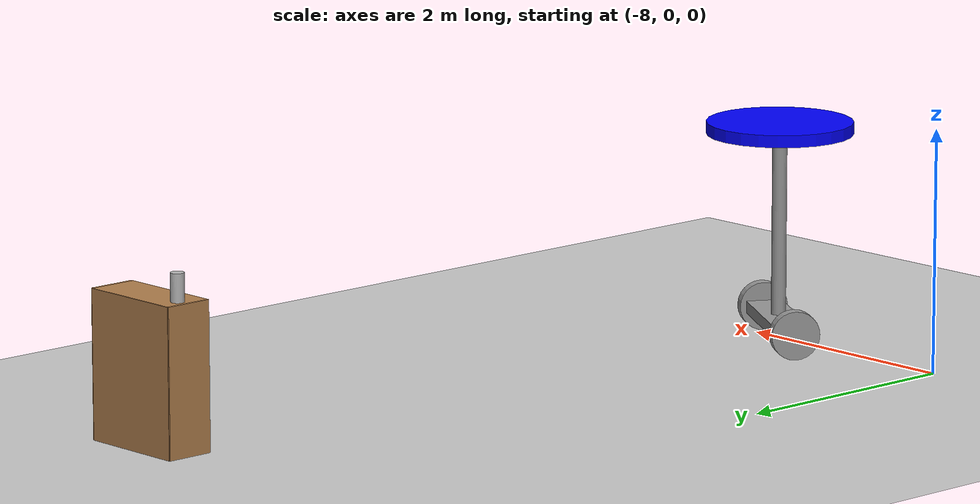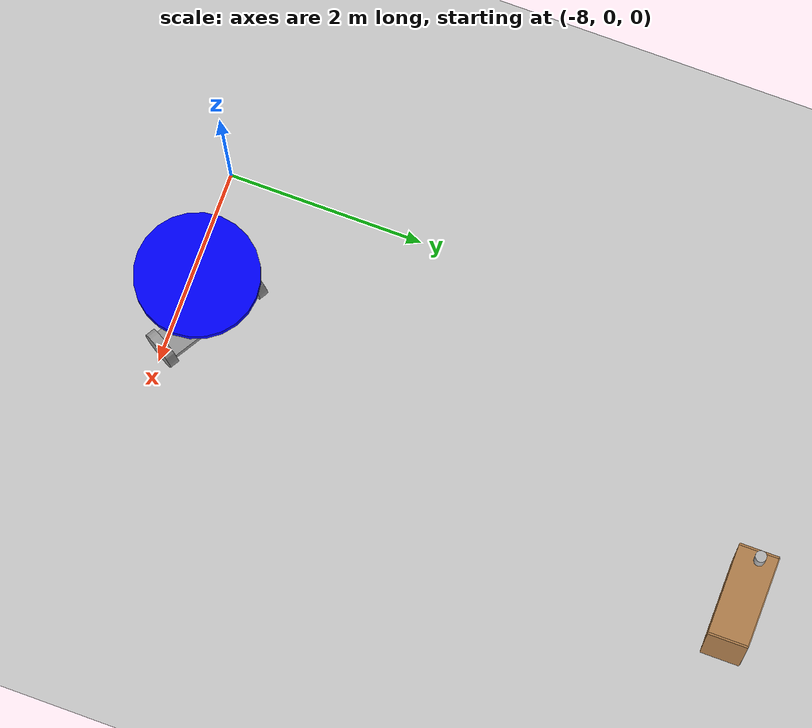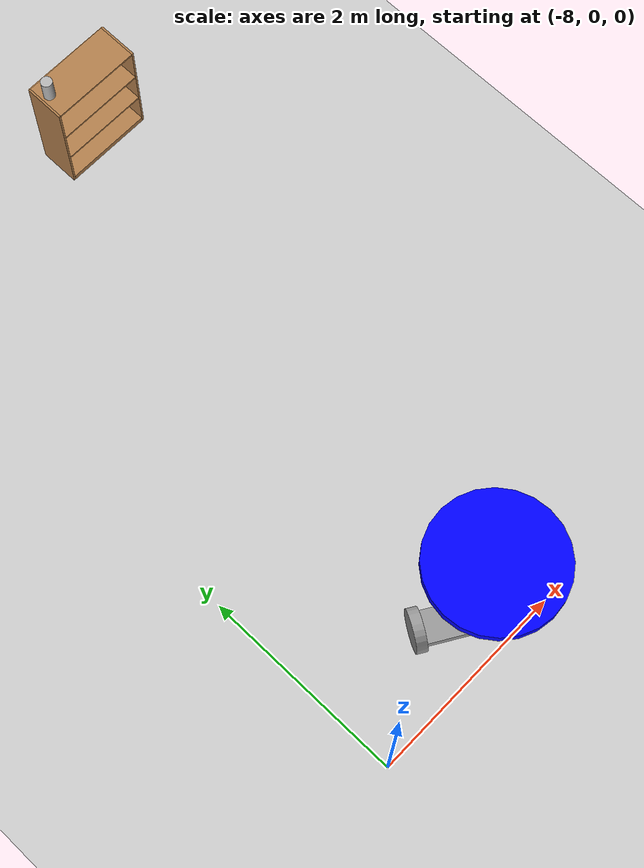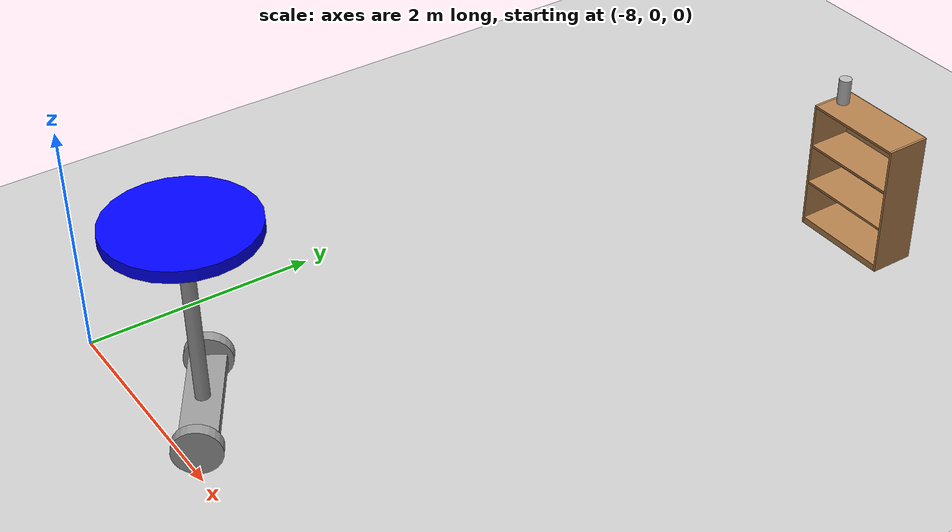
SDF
<sdf version="1.6">
 <world name="default">
  <model name="ground_plane">
   <static>1</static>
   <link name="link">
    <collision name="collision">
     <geometry><plane><normal>0 0 1</normal><size>100 100</size></plane></geometry>
     <surface><friction><ode><mu>100</mu><mu2>50</mu2></ode></friction></surface>
    </collision>
    <visual name="visual">
     <cast_shadows>0</cast_shadows>
     <geometry><plane><normal>0 0 1</normal><size>100 100</size></plane></geometry>
     <material>
      <script><uri>file://media/materials/scripts/gazebo.material</uri><name>Gazebo/Grey</name></script>
     </material>
    </visual>
   </link>
  </model>
  <model name="two_wheel_table_clone">
   <link name="link_0">
    <inertial>
     <mass>1</mass>
     <inertia>
      <ixx>0.166667</ixx>
      <ixy>0</ixy>
      <ixz>0</ixz>
      <iyy>0.166667</iyy>
      <iyz>0</iyz>
      <izz>0.166667</izz>
     </inertia>
    </inertial>
    <visual name="visual">
     <geometry><box><size>0.3 1 0.1</size></box></geometry>
     <material>
      <lighting>1</lighting>
      <script><uri>file://media/materials/scripts/gazebo.material</uri><name>Gazebo/Grey</name></script>
      <shader type="pixel"><normal_map>__default__</normal_map></shader>
      <ambient>0.3 0.3 0.3 1</ambient>
      <diffuse>0.7 0.7 0.7 1</diffuse>
      <specular>0.01 0.01 0.01 1</specular>
      <emissive>0 0 0 1</emissive>
     </material>
    </visual>
    <collision name="collision">
     <geometry><box><size>0.3 1 0.1</size></box></geometry>
     <surface>
      <friction>
       <ode><mu>1</mu><mu2>1</mu2><fdir1>0 0 0</fdir1><slip1>0</slip1><slip2>0</slip2></ode>
       <torsional>
        <coefficient>1</coefficient>
        <patch_radius>0</patch_radius>
        <surface_radius>0</surface_radius>
        <use_patch_radius>1</use_patch_radius>
        <ode><slip>0</slip></ode>
       </torsional>
      </friction>
      <bounce><restitution_coefficient>0</restitution_coefficient><threshold>1e+06</threshold></bounce>
      <contact>
       <collide_without_contact>0</collide_without_contact>
       <collide_without_contact_bitmask>1</collide_without_contact_bitmask>
       <collide_bitmask>1</collide_bitmask>
       <ode>
        <soft_cfm>0</soft_cfm>
        <soft_erp>0.2</soft_erp>
        <kp>1e+13</kp>
        <kd>1</kd>
        <max_vel>0.01</max_vel>
        <min_depth>0</min_depth>
       </ode>
       <bullet>
        <split_impulse>1</split_impulse>
        <split_impulse_penetration_threshold>-0.01</split_impulse_penetration_threshold>
        <soft_cfm>0</soft_cfm>
        <soft_erp>0.2</soft_erp>
        <kp>1e+13</kp>
        <kd>1</kd>
       </bullet>
      </contact>
     </surface>
    </collision>
   </link>
   <link name="link_1">
    <pose>-0 -0.550159 -0 1.57 -0 0</pose>
    <inertial>
     <mass>1</mass>
     <inertia><ixx>0.145833</ixx><ixy>0</ixy><ixz>0</ixz><iyy>0.145833</iyy><iyz>0</iyz><izz>0.125</izz></inertia>
    </inertial>
    <visual name="visual">
     <geometry><cylinder><radius>0.2</radius><length>0.1</length></cylinder></geometry>
     <material>
      <lighting>1</lighting>
      <script><uri>file://media/materials/scripts/gazebo.material</uri><name>Gazebo/Grey</name></script>
      <shader type="pixel"><normal_map>__default__</normal_map></shader>
      <ambient>0 0 0 1</ambient>
      <diffuse>0.7 0.7 0.7 1</diffuse>
      <specular>0.01 0.01 0.01 1</specular>
      <emissive>0 0 0 1</emissive>
     </material>
    </visual>
    <collision name="collision">
     <geometry><cylinder><radius>0.2</radius><length>0.1</length></cylinder></geometry>
     <surface>
      <friction>
       <ode><mu>1</mu><mu2>1</mu2><fdir1>0 0 0</fdir1><slip1>0</slip1><slip2>0</slip2></ode>
       <torsional>
        <coefficient>1</coefficient>
        <patch_radius>0</patch_radius>
        <surface_radius>0</surface_radius>
        <use_patch_radius>1</use_patch_radius>
        <ode><slip>0</slip></ode>
       </torsional>
      </friction>
      <bounce><restitution_coefficient>0</restitution_coefficient><threshold>1e+06</threshold></bounce>
      <contact>
       <collide_without_contact>0</collide_without_contact>
       <collide_without_contact_bitmask>1</collide_without_contact_bitmask>
       <collide_bitmask>1</collide_bitmask>
       <ode>
        <soft_cfm>0</soft_cfm>
        <soft_erp>0.2</soft_erp>
        <kp>1e+13</kp>
        <kd>1</kd>
        <max_vel>0.01</max_vel>
        <min_depth>0</min_depth>
       </ode>
       <bullet>
        <split_impulse>1</split_impulse>
        <split_impulse_penetration_threshold>-0.01</split_impulse_penetration_threshold>
        <soft_cfm>0</soft_cfm>
        <soft_erp>0.2</soft_erp>
        <kp>1e+13</kp>
        <kd>1</kd>
       </bullet>
      </contact>
     </surface>
    </collision>
   </link>
   <link name="link_1_0">
    <pose>-0 -0 0.3 0 -0 0</pose>
    <inertial>
     <mass>1</mass>
     <inertia><ixx>0.145833</ixx><ixy>0</ixy><ixz>0</ixz><iyy>0.145833</iyy><iyz>0</iyz><izz>0.125</izz></inertia>
    </inertial>
    <visual name="visual">
     <pose>0 0 0.5 0 -0 0</pose>
     <geometry><cylinder><radius>0.06</radius><length>1.5</length></cylinder></geometry>
     <material>
      <lighting>1</lighting>
      <script><uri>file://media/materials/scripts/gazebo.material</uri><name>Gazebo/Grey</name></script>
      <shader type="pixel"><normal_map>__default__</normal_map></shader>
      <ambient>0.3 0.3 0.3 1</ambient>
      <diffuse>0.7 0.7 0.7 1</diffuse>
      <specular>0.01 0.01 0.01 1</specular>
      <emissive>0 0 0 1</emissive>
     </material>
    </visual>
    <collision name="collision">
     <pose>0 0 0.5 0 -0 0</pose>
     <geometry><cylinder><radius>0.06</radius><length>1.5</length></cylinder></geometry>
     <surface>
      <friction>
       <ode><mu>1</mu><mu2>1</mu2><fdir1>0 0 0</fdir1><slip1>0</slip1><slip2>0</slip2></ode>
       <torsional>
        <coefficient>1</coefficient>
        <patch_radius>0</patch_radius>
        <surface_radius>0</surface_radius>
        <use_patch_radius>1</use_patch_radius>
        <ode><slip>0</slip></ode>
       </torsional>
      </friction>
      <bounce><restitution_coefficient>0</restitution_coefficient><threshold>1e+06</threshold></bounce>
      <contact>
       <collide_without_contact>0</collide_without_contact>
       <collide_without_contact_bitmask>1</collide_without_contact_bitmask>
       <collide_bitmask>1</collide_bitmask>
       <ode>
        <soft_cfm>0</soft_cfm>
        <soft_erp>0.2</soft_erp>
        <kp>1e+13</kp>
        <kd>1</kd>
        <max_vel>0.01</max_vel>
        <min_depth>0</min_depth>
       </ode>
       <bullet>
        <split_impulse>1</split_impulse>
        <split_impulse_penetration_threshold>-0.01</split_impulse_penetration_threshold>
        <soft_cfm>0</soft_cfm>
        <soft_erp>0.2</soft_erp>
        <kp>1e+13</kp>
        <kd>1</kd>
       </bullet>
      </contact>
     </surface>
    </collision>
   </link>
   <link name="link_1_clone">
    <pose>0 0.550159 0 1.57 -0 0</pose>
    <inertial>
     <mass>1</mass>
     <inertia><ixx>0.145833</ixx><ixy>0</ixy><ixz>0</ixz><iyy>0.145833</iyy><iyz>0</iyz><izz>0.125</izz></inertia>
    </inertial>
    <visual name="visual">
     <geometry><cylinder><radius>0.2</radius><length>0.1</length></cylinder></geometry>
     <material>
      <lighting>1</lighting>
      <script><uri>file://media/materials/scripts/gazebo.material</uri><name>Gazebo/Grey</name></script>
      <shader type="pixel"><normal_map>__default__</normal_map></shader>
      <ambient>0.3 0.3 0.3 1</ambient>
      <diffuse>0 0 0 1</diffuse>
      <specular>0 0 0 1</specular>
      <emissive>0 0 0 1</emissive>
     </material>
    </visual>
    <collision name="collision">
     <geometry><cylinder><radius>0.2</radius><length>0.1</length></cylinder></geometry>
     <surface>
      <friction>
       <ode><mu>1</mu><mu2>1</mu2><fdir1>0 0 0</fdir1><slip1>0</slip1><slip2>0</slip2></ode>
       <torsional>
        <coefficient>1</coefficient>
        <patch_radius>0</patch_radius>
        <surface_radius>0</surface_radius>
        <use_patch_radius>1</use_patch_radius>
        <ode><slip>0</slip></ode>
       </torsional>
      </friction>
      <bounce><restitution_coefficient>0</restitution_coefficient><threshold>1e+06</threshold></bounce>
      <contact>
       <collide_without_contact>0</collide_without_contact>
       <collide_without_contact_bitmask>1</collide_without_contact_bitmask>
       <collide_bitmask>1</collide_bitmask>
       <ode>
        <soft_cfm>0</soft_cfm>
        <soft_erp>0.2</soft_erp>
        <kp>1e+13</kp>
        <kd>1</kd>
        <max_vel>0.01</max_vel>
        <min_depth>0</min_depth>
       </ode>
       <bullet>
        <split_impulse>1</split_impulse>
        <split_impulse_penetration_threshold>-0.01</split_impulse_penetration_threshold>
        <soft_cfm>0</soft_cfm>
        <soft_erp>0.2</soft_erp>
        <kp>1e+13</kp>
        <kd>1</kd>
       </bullet>
      </contact>
     </surface>
    </collision>
   </link>
   <link name="link_2">
    <pose>0 -0 1.6 -1e-06 0 0</pose>
    <inertial>
     <mass>1</mass>
     <inertia><ixx>0.145833</ixx><ixy>0</ixy><ixz>0</ixz><iyy>0.145833</iyy><iyz>0</iyz><izz>0.125</izz></inertia>
    </inertial>
    <kinematic>1</kinematic>
    <visual name="visual">
     <geometry><cylinder><radius>0.6</radius><length>0.1</length></cylinder></geometry>
     <material>
      <lighting>1</lighting>
      <script><uri>file://media/materials/scripts/gazebo.material</uri><name>Gazebo/Grey</name></script>
      <shader type="pixel"><normal_map>__default__</normal_map></shader>
      <ambient>0 0 1 1</ambient>
      <diffuse>0 0 1 1</diffuse>
      <specular>0 0 1 1</specular>
      <emissive>0 0 1 1</emissive>
     </material>
    </visual>
    <collision name="collision">
     <geometry><cylinder><radius>0.6</radius><length>0.1</length></cylinder></geometry>
     <surface>
      <friction>
       <ode><mu>1</mu><mu2>1</mu2><fdir1>0 0 0</fdir1><slip1>0</slip1><slip2>0</slip2></ode>
       <torsional>
        <coefficient>1</coefficient>
        <patch_radius>0</patch_radius>
        <surface_radius>0</surface_radius>
        <use_patch_radius>1</use_patch_radius>
        <ode><slip>0</slip></ode>
       </torsional>
      </friction>
      <bounce><restitution_coefficient>0</restitution_coefficient><threshold>1e+06</threshold></bounce>
      <contact>
       <collide_without_contact>0</collide_without_contact>
       <collide_without_contact_bitmask>1</collide_without_contact_bitmask>
       <collide_bitmask>1</collide_bitmask>
       <ode>
        <soft_cfm>0</soft_cfm>
        <soft_erp>0.2</soft_erp>
        <kp>1e+13</kp>
        <kd>1</kd>
        <max_vel>0.01</max_vel>
        <min_depth>0</min_depth>
       </ode>
       <bullet>
        <split_impulse>1</split_impulse>
        <split_impulse_penetration_threshold>-0.01</split_impulse_penetration_threshold>
        <soft_cfm>0</soft_cfm>
        <soft_erp>0.2</soft_erp>
        <kp>1e+13</kp>
        <kd>1</kd>
       </bullet>
      </contact>
     </surface>
    </collision>
   </link>
   <joint name="link_0_JOINT_0_0" type="fixed">
    <parent>link_0</parent>
    <child>link_1_0</child>
    <pose>0 0 0.2 0 -0 0</pose>
    <physics>
     <ode><limit><cfm>0</cfm><erp>0.2</erp></limit><suspension><cfm>0</cfm><erp>0.2</erp></suspension></ode>
    </physics>
   </joint>
   <joint name="link_0_JOINT_0" type="revolute">
    <parent>link_0</parent>
    <child>link_1</child>
    <axis>
     <xyz>1 0 0</xyz>
     <use_parent_model_frame>0</use_parent_model_frame>
     <limit>
      <lower>-1.79769e+308</lower>
      <upper>1.79769e+308</upper>
      <effort>-1</effort>
      <velocity>-1</velocity>
     </limit>
     <dynamics>
      <spring_reference>0</spring_reference>
      <spring_stiffness>0</spring_stiffness>
      <damping>0</damping>
      <friction>0</friction>
     </dynamics>
    </axis>
    <physics>
     <ode><limit><cfm>0</cfm><erp>0.2</erp></limit><suspension><cfm>0</cfm><erp>0.2</erp></suspension></ode>
    </physics>
   </joint>
   <joint name="link_0_JOINT_1" type="revolute">
    <parent>link_0</parent>
    <child>link_1_clone</child>
    <axis>
     <xyz>1 0 0</xyz>
     <use_parent_model_frame>0</use_parent_model_frame>
     <limit>
      <lower>-1.79769e+308</lower>
      <upper>1.79769e+308</upper>
      <effort>-1</effort>
      <velocity>-1</velocity>
     </limit>
     <dynamics>
      <spring_reference>0</spring_reference>
      <spring_stiffness>0</spring_stiffness>
      <damping>0</damping>
      <friction>0</friction>
     </dynamics>
    </axis>
    <physics>
     <ode><limit><cfm>0</cfm><erp>0.2</erp></limit><suspension><cfm>0</cfm><erp>0.2</erp></suspension></ode>
    </physics>
   </joint>
   <joint name="link_1_0_JOINT_1" type="revolute">
    <parent>link_1_0</parent>
    <child>link_2</child>
    <axis>
     <xyz>1 0 0</xyz>
     <use_parent_model_frame>0</use_parent_model_frame>
     <limit>
      <lower>-1.79769e+308</lower>
      <upper>1.79769e+308</upper>
      <effort>-1</effort>
      <velocity>-1</velocity>
     </limit>
     <dynamics>
      <spring_reference>0</spring_reference>
      <spring_stiffness>0</spring_stiffness>
      <damping>0</damping>
      <friction>0</friction>
     </dynamics>
    </axis>
    <physics>
     <ode><limit><cfm>0</cfm><erp>0.2</erp></limit><suspension><cfm>0</cfm><erp>0.2</erp></suspension></ode>
    </physics>
   </joint>
   <static>0</static>
   <pose>-6.55328 0.308315 0.248073 -0.001802 0.000771 1.02054</pose>
  </model>
  <model name="bookshelf">
   <static>1</static>
   <link name="link">
    <inertial><mass>1</mass></inertial>
    <collision name="back">
     <pose>0 0.005 0.6 0 -0 0</pose>
     <geometry><box><size>0.9 0.01 1.2</size></box></geometry>
    </collision>
    <visual name="visual1">
     <pose>0 0.005 0.6 0 -0 0</pose>
     <geometry><box><size>0.9 0.01 1.2</size></box></geometry>
     <material>
      <script><uri>file://media/materials/scripts/gazebo.material</uri><name>Gazebo/Wood</name></script>
     </material>
    </visual>
    <collision name="left_side">
     <pose>0.45 -0.195 0.6 0 -0 0</pose>
     <geometry><box><size>0.02 0.4 1.2</size></box></geometry>
    </collision>
    <visual name="visual2">
     <pose>0.45 -0.195 0.6 0 -0 0</pose>
     <geometry><box><size>0.02 0.4 1.2</size></box></geometry>
     <material>
      <script><uri>file://media/materials/scripts/gazebo.material</uri><name>Gazebo/Wood</name></script>
     </material>
    </visual>
    <collision name="right_side">
     <pose>-0.45 -0.195 0.6 0 -0 0</pose>
     <geometry><box><size>0.02 0.4 1.2</size></box></geometry>
    </collision>
    <visual name="visual3">
     <pose>-0.45 -0.195 0.6 0 -0 0</pose>
     <geometry><box><size>0.02 0.4 1.2</size></box></geometry>
     <material>
      <script><uri>file://media/materials/scripts/gazebo.material</uri><name>Gazebo/Wood</name></script>
     </material>
    </visual>
    <collision name="bottom">
     <pose>0 -0.195 0.03 0 -0 0</pose>
     <geometry><box><size>0.88 0.4 0.06</size></box></geometry>
    </collision>
    <visual name="visual4">
     <pose>0 -0.195 0.03 0 -0 0</pose>
     <geometry><box><size>0.88 0.4 0.06</size></box></geometry>
     <material>
      <script><uri>file://media/materials/scripts/gazebo.material</uri><name>Gazebo/Wood</name></script>
     </material>
    </visual>
    <collision name="top">
     <pose>0 -0.195 1.19 0 -0 0</pose>
     <geometry><box><size>0.88 0.4 0.02</size></box></geometry>
    </collision>
    <visual name="visual5">
     <pose>0 -0.195 1.19 0 -0 0</pose>
     <geometry><box><size>0.88 0.4 0.02</size></box></geometry>
     <material>
      <script><uri>file://media/materials/scripts/gazebo.material</uri><name>Gazebo/Wood</name></script>
     </material>
    </visual>
    <collision name="low_shelf">
     <pose>0 -0.195 0.43 0 -0 0</pose>
     <geometry><box><size>0.88 0.4 0.02</size></box></geometry>
    </collision>
    <visual name="visual6">
     <pose>0 -0.195 0.43 0 -0 0</pose>
     <geometry><box><size>0.88 0.4 0.02</size></box></geometry>
     <material>
      <script><uri>file://media/materials/scripts/gazebo.material</uri><name>Gazebo/Wood</name></script>
     </material>
    </visual>
    <collision name="high_shelf">
     <pose>0 -0.195 0.8 0 -0 0</pose>
     <geometry><box><size>0.88 0.4 0.02</size></box></geometry>
    </collision>
    <visual name="visual7">
     <pose>0 -0.195 0.8 0 -0 0</pose>
     <geometry><box><size>0.88 0.4 0.02</size></box></geometry>
     <material>
      <script><uri>file://media/materials/scripts/gazebo.material</uri><name>Gazebo/Wood</name></script>
     </material>
    </visual>
   </link>
   <pose>-5.55907 6.31621 0 0 -0 0</pose>
  </model>
  <model name="beer_0">
   <link name="link">
    <pose>0 0 0.115 0 -0 0</pose>
    <inertial>
     <mass>0.39</mass>
     <inertia><ixx>0.00058</ixx><ixy>0</ixy><ixz>0</ixz><iyy>0.00058</iyy><iyz>0</iyz><izz>0.00019</izz></inertia>
    </inertial>
    <collision name="collision">
     <geometry><cylinder><radius>0.055</radius><length>0.23</length></cylinder></geometry>
    </collision>
    <visual name="visual">
     <geometry><cylinder><radius>0.055</radius><length>0.23</length></cylinder></geometry>
     <material>
      <script>
       <uri>model://beer/materials/scripts</uri>
       <uri>model://beer/materials/textures</uri>
       <name>Beer/Diffuse</name>
      </script>
     </material>
    </visual>
   </link>
   <pose>-5.92117 6.14898 1.2 4.2e-05 1.2e-05 0.01786</pose>
  </model>
 </world>
</sdf>
